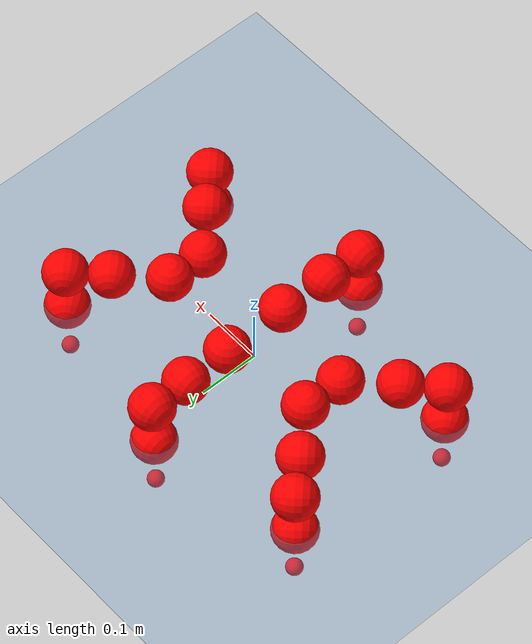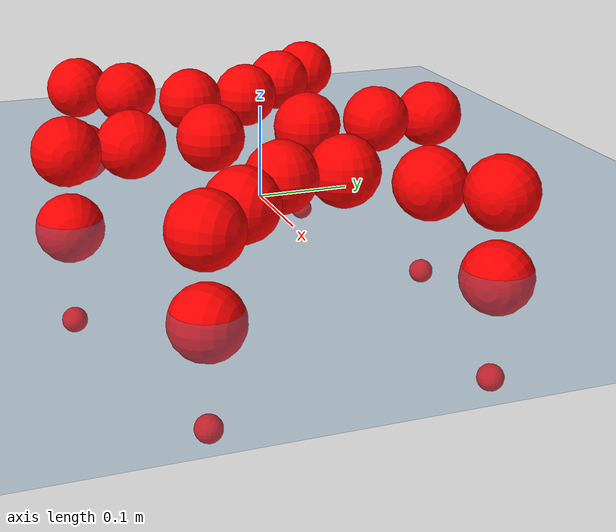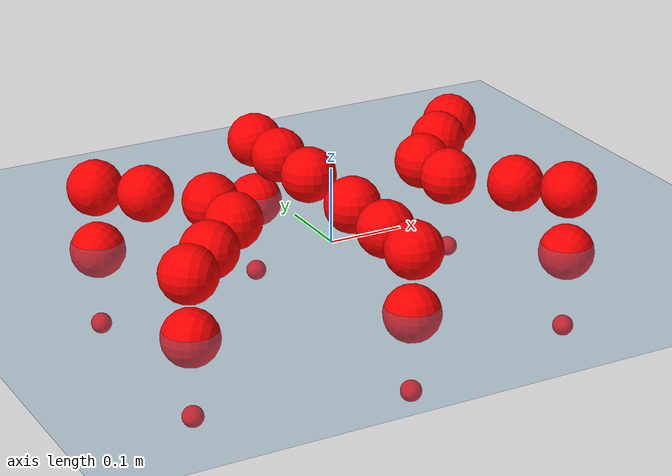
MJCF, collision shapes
<mujoco model="Golem">
  <compiler angle="radian" assetdir="assets" balanceinertia="true" inertiafromgeom="false"/>

  <option timestep="0.005" density="1.2" viscosity="2e-05"/>

  <size nkey="1"/>

  <visual>
    <quality shadowsize="8192"/>
    <map shadowclip="0.5"/>
  </visual>

  <default>
    <default class="/">
      <joint armature="0.01" damping="0.01" frictionloss="0.01"/>
      <geom contype="0" conaffinity="0" group="1" solref="-1000 -80"/>
      <site size="0.01 0.005 0.005" group="5"/>
      <general forcelimited="true" biastype="affine" gainprm="25" biasprm="0 -25 -0.5"/>
      <default class="visual">
        <geom type="mesh" group="2"/>
      </default>
      <default class="collision">
        <geom group="3"/>
      </default>
      <default class="foot">
        <geom size="0.01 0 0" condim="6" group="4" priority="1" solimp="0.015 1 0.01"/>
      </default>
      <default class="reward_collision_sphere">
        <geom group="5" rgba="1 0 0 1"/>
      </default>
    </default>
  </default>

  <asset>
    <texture type="skybox" colorspace="auto" name="//unnamed_texture_0" builtin="gradient" rgb1="0.95 0.95 0.95" rgb2="0.95 0.95 0.95" width="100" height="600"/>
    <texture type="2d" colorspace="auto" name="texplane" builtin="checker" rgb1="0.345 0.575 0.748" rgb2="0.345 0.575 0.748" markrgb="1 1 1" width="512" height="512"/>
    <material name="MatPlane" class="/" texture="texplane" texuniform="true" texrepeat="2 2" specular="0.9"/>
    <mesh name="body" class="/" file="body.stl" scale="0.001 0.001 0.001"/>
    <mesh name="coxa" class="/" file="coxa.stl" scale="0.001 0.001 0.001"/>
    <mesh name="femur" class="/" file="femur.stl" scale="0.001 0.001 0.001"/>
    <mesh name="tibia" class="/" file="tibia.stl" scale="0.001 0.001 0.001"/>
    <mesh name="tarsus" class="/" file="tarsus.stl" scale="0.001 0.001 0.001"/>
  </asset>

  <worldbody>
    <geom name="floor" class="/" size="100 100 0.125" type="plane" group="0" material="MatPlane"/>
    <light name="toplight_shadow" class="/" pos="0 0 5" dir="0.0990148 0.0990148 -0.990148" type="directional" ambient="0.04 0.04 0.04" diffuse="0.55 0.55 0.55" specular="0.12 0.12 0.12"/>
    <light name="toplight_fill" class="/" pos="0 0 5" dir="0.0990148 0.0990148 -0.990148" type="directional" castshadow="false" ambient="0.04 0.04 0.04" diffuse="0.3 0.3 0.3" specular="0.08 0.08 0.08"/>
    <body name="trunk" pos="-0.000467365 0.000370137 0.000156638" quat="1 -6.40679e-05 4.10892e-05 3.63837e-05">
      <inertial pos="0.000290035 -0.000946644 -0.00174664" quat="0.99999 0.000643659 -0.00321319 0.0030357" mass="2.80289" diaginertia="0.0088735 0.0010858 0.0172381"/>
      <joint name="//unnamed_joint_0" type="free"/>
      <geom name="//unnamed_geom_1" class="/" pos="0 0 0.0711149" quat="1 0 0 0" type="mesh" rgba="0.9 0.9 0.9 1" mesh="body"/>
      <site name="imu" class="/" pos="0.127412 0.00248437 0.104993" size="0.00906058"/>
      <camera name="track" class="/" pos="0 -1.27556 0" quat="0.707107 0.707107 0 0" mode="trackcom"/>
      <camera name="ego_camera" class="/" pos="0.125999 0 0.111117" quat="-0.5 -0.5 0.5 0.5"/>
      <body name="coxa_RR" pos="-0.172691 -0.0535677 0.0726219" quat="0.382602 4.64585e-05 2.3957e-05 -0.923913">
        <inertial pos="-0.00026199 0.000888561 0.000815267" quat="1 0.000385678 -0.000299423 0.000289467" mass="0.149401" diaginertia="0.00862433 0.00107869 0.0169114"/>
        <joint name="coxa_joint_RR" class="/" pos="0 0 0" axis="-0.00464937 -0.00400055 -0.999981" range="-3.12865 3.1378" armature="0.00925703" damping="0" frictionloss="0.00911507"/>
        <geom name="//unnamed_geom_2" class="/" type="mesh" rgba="0.2 0.2 0.2 1" mesh="coxa"/>
        <geom name="//unnamed_geom_3" class="reward_collision_sphere" size="0.0362423" pos="-0.0290767 0 0"/>
        <body name="femur_RR" pos="0.0586108 -1.70791e-05 -0.00133538" quat="0.500023 -0.500267 0.500059 0.49965">
          <inertial pos="-0.000152279 5.98676e-05 0.000839475" quat="0.999999 -0.000560874 0.000805249 -0.00130223" mass="0.146933" diaginertia="0.00861312 0.00104206 0.0165959"/>
          <joint name="femur_joint_RR" class="/" pos="0 0 0" axis="0.00583593 0.000903634 -0.999983" range="-3.13819 3.12496" armature="0.00905136" damping="0.000906578" frictionloss="0.00862041"/>
          <geom name="//unnamed_geom_4" class="/" type="mesh" rgba="0.9 0.9 0.9 1" mesh="femur"/>
          <geom name="//unnamed_geom_5" class="reward_collision_sphere" size="0.0362423"/>
          <body name="tibia_RR" pos="0.00136968 -0.0690703 -0.000930603" quat="-3.37806e-05 1 4.64855e-05 4.04216e-05">
            <inertial pos="-4.85903e-05 -0.00125009 9.83343e-06" quat="0.999972 -0.00376451 -0.00295572 -0.00575567" mass="0.148852" diaginertia="0.00865643 0.00105864 0.0170119"/>
            <joint name="tibia_joint_RR" class="/" pos="0 0 0" axis="-0.000364996 -0.00122289 0.999999" range="-3.14854 3.14225" armature="0.009155" damping="0" frictionloss="0.00945257"/>
            <geom name="//unnamed_geom_6" class="/" type="mesh" rgba="0.2 0.2 0.2 1" mesh="tibia"/>
            <geom name="//unnamed_geom_7" class="reward_collision_sphere" size="0.0362423"/>
            <body name="tarsus_RR" pos="0.082021 -0.001375 0.000227866" quat="1 0.000147188 0.000202275 -0.000358235">
              <inertial pos="0.0581917 0.000382464 0.000361039" quat="0.496883 0.49875 0.50336 0.500983" mass="0.149487" diaginertia="0.0085555 0.00104971 0.0167915"/>
              <joint name="tarsus_joint_RR" class="/" pos="0 0 0" axis="-1.30066e-05 -1.48692e-05 1" range="-3.13001 3.13017" armature="0.00927202" damping="0.00751379" frictionloss="0.00914755"/>
              <geom name="//unnamed_geom_8" class="/" type="mesh" rgba="0.9 0.9 0.9 1" mesh="tarsus"/>
              <geom name="foot_1" class="foot" size="0.00863994" pos="0.108553 0 0" quat="0 -0.707107 0 0.707107"/>
              <geom name="//unnamed_geom_10" class="reward_collision_sphere" size="0.0362423"/>
              <geom name="//unnamed_geom_11" class="reward_collision_sphere" size="0.0135909" pos="0.104192 0 0"/>
              <site name="foot_1" class="foot" pos="0.108553 0 0" quat="0 -0.707107 0 0.707107" size="0.00906058"/>
            </body>
          </body>
        </body>
      </body>
      <body name="coxa_RM" pos="0.000241651 -0.0847292 0.0716365" quat="0.706542 -0.000227519 -1.75659e-05 -0.707671">
        <inertial pos="-5.76372e-05 -0.000120261 -0.000297935" quat="1 -0.000400846 -5.6116e-05 -0.000178006" mass="0.149566" diaginertia="0.00858575 0.00106137 0.0169307"/>
        <joint name="coxa_joint_RM" class="/" pos="0 0 0" axis="-9.67803e-06 0.00223683 -0.999997" stiffness="0.000222626" range="-3.13505 3.13506" armature="0.00899646" damping="0.00815456" frictionloss="0.0086853"/>
        <geom name="//unnamed_geom_12" class="/" type="mesh" rgba="0.2 0.2 0.2 1" mesh="coxa"/>
        <geom name="//unnamed_geom_13" class="reward_collision_sphere" size="0.0362423" pos="-0.0290767 0 0"/>
        <body name="femur_RM" pos="0.0563515 -0.00158028 0.000296475" quat="0.500104 -0.500087 0.500092 0.499717">
          <inertial pos="0.00138761 0.000504002 -2.0645e-05" quat="0.999993 0.00171396 -0.00167091 -0.0027499" mass="0.146877" diaginertia="0.00833526 0.00104172 0.0164192"/>
          <joint name="femur_joint_RM" class="/" pos="0 0 0" axis="0.000722074 0.0016827 -0.999998" range="-3.14293 3.11637" armature="0.00891672" damping="0.00560629" frictionloss="0.00946049"/>
          <geom name="//unnamed_geom_14" class="/" type="mesh" rgba="0.9 0.9 0.9 1" mesh="femur"/>
          <geom name="//unnamed_geom_15" class="reward_collision_sphere" size="0.0362423"/>
          <body name="tibia_RM" pos="0.000937676 -0.0678932 -0.000286268" quat="0.000328243 1 -0.000107763 7.14238e-05">
            <inertial pos="0.000775636 0.00160415 0.000313318" quat="0.999993 -0.000391343 -0.00070074 -0.00355758" mass="0.15072" diaginertia="0.00864846 0.00106807 0.0171289"/>
            <joint name="tibia_joint_RM" class="/" pos="0 0 0" axis="0.00171045 0.00055501 0.999998" range="-3.14461 3.12668" armature="0.00929497" damping="0.0129288" frictionloss="0.00898846"/>
            <geom name="//unnamed_geom_16" class="/" type="mesh" rgba="0.2 0.2 0.2 1" mesh="tibia"/>
            <geom name="//unnamed_geom_17" class="reward_collision_sphere" size="0.0362423"/>
            <body name="tarsus_RM" pos="0.0832223 -0.000377911 0.000361486" quat="1 3.90454e-05 2.97363e-05 3.01779e-05">
              <inertial pos="0.0588551 0.000204408 -0.000346889" quat="0.499264 0.500843 0.499573 0.500318" mass="0.152269" diaginertia="0.00855049 0.0010628 0.017355"/>
              <joint name="tarsus_joint_RM" class="/" pos="0 0 0" axis="-0.00144654 0.00175736 0.999997" stiffness="0.000242202" range="-3.14104 3.12984" armature="0.00891163" damping="0.0079358" frictionloss="0.00902175"/>
              <geom name="//unnamed_geom_18" class="/" type="mesh" rgba="0.9 0.9 0.9 1" mesh="tarsus"/>
              <geom name="foot_2" class="foot" size="0.00892703" pos="0.108553 0 0" quat="0 -0.707107 0 0.707107"/>
              <geom name="//unnamed_geom_20" class="reward_collision_sphere" size="0.0362423"/>
              <geom name="//unnamed_geom_21" class="reward_collision_sphere" size="0.0135909" pos="0.104192 0 0"/>
              <site name="foot_2" class="foot" pos="0.108553 0 0" quat="0 -0.707107 0 0.707107" size="0.00906058"/>
            </body>
          </body>
        </body>
      </body>
      <body name="coxa_RF" pos="0.173358 -0.0533128 0.0725246" quat="0.923848 0.000220462 -0.000286336 -0.38276">
        <inertial pos="0.00018569 -0.0012728 0.000335913" quat="0.999984 -0.00242966 -0.00441494 0.00246655" mass="0.148641" diaginertia="0.00867302 0.001059 0.0170024"/>
        <joint name="coxa_joint_RF" class="/" pos="0 0 0" axis="-0.000989078 0.00143037 -0.999998" range="-3.11194 3.12037" armature="0.00885715" damping="0" frictionloss="0.00920805"/>
        <geom name="//unnamed_geom_22" class="/" type="mesh" rgba="0.2 0.2 0.2 1" mesh="coxa"/>
        <geom name="//unnamed_geom_23" class="reward_collision_sphere" size="0.0362423" pos="-0.0290767 0 0"/>
        <body name="femur_RF" pos="0.0583182 0.00135003 -0.000123331" quat="0.500047 -0.499907 0.500034 0.500011">
          <inertial pos="0.00025459 0.00103055 -7.24894e-05" quat="0.999998 0.000466845 -0.00180272 0.00121039" mass="0.149613" diaginertia="0.00882497 0.00107459 0.0173954"/>
          <joint name="femur_joint_RF" class="/" pos="0 0 0" axis="-0.000151202 0.00160542 -0.999999" range="-3.14357 3.15738" armature="0.00895579" damping="0.0101601" frictionloss="0.00949787"/>
          <geom name="//unnamed_geom_24" class="/" type="mesh" rgba="0.9 0.9 0.9 1" mesh="femur"/>
          <geom name="//unnamed_geom_25" class="reward_collision_sphere" size="0.0362423"/>
          <body name="tibia_RF" pos="0.00073609 -0.0685724 -0.000616113" quat="6.12535e-06 1 1.0282e-05 -6.26289e-06">
            <inertial pos="0.000300525 0.000227672 -0.00168921" quat="0.999994 -0.00144732 -0.00312152 -0.000839022" mass="0.150409" diaginertia="0.00862497 0.00104814 0.0170966"/>
            <joint name="tibia_joint_RF" class="/" pos="0 0 0" axis="0.00264552 -0.00261315 0.999993" stiffness="0.000333753" range="-3.13304 3.12061" armature="0.00892844" damping="0.0116108" frictionloss="0.00868375"/>
            <geom name="//unnamed_geom_26" class="/" type="mesh" rgba="0.2 0.2 0.2 1" mesh="tibia"/>
            <geom name="//unnamed_geom_27" class="reward_collision_sphere" size="0.0362423"/>
            <body name="tarsus_RF" pos="0.0857666 0.000797041 -0.000544427" quat="1 -7.88449e-06 -2.31616e-05 8.78996e-06">
              <inertial pos="0.0587635 0.000219501 -0.000367779" quat="0.499287 0.499879 0.4995 0.501332" mass="0.14705" diaginertia="0.00852986 0.00103322 0.016459"/>
              <joint name="tarsus_joint_RF" class="/" pos="0 0 0" axis="0.00196363 0.0035127 0.999992" stiffness="0.0231683" range="-3.13671 3.14187" armature="0.00909115" damping="0" frictionloss="0.0092157"/>
              <geom name="//unnamed_geom_28" class="/" type="mesh" rgba="0.9 0.9 0.9 1" mesh="tarsus"/>
              <geom name="foot_3" class="foot" size="0.00895768" pos="0.108553 0 0" quat="0 -0.707107 0 0.707107"/>
              <geom name="//unnamed_geom_30" class="reward_collision_sphere" size="0.0362423"/>
              <geom name="//unnamed_geom_31" class="reward_collision_sphere" size="0.0135909" pos="0.104192 0 0"/>
              <site name="foot_3" class="foot" pos="0.108553 0 0" quat="0 -0.707107 0 0.707107" size="0.00906058"/>
            </body>
          </body>
        </body>
      </body>
      <body name="coxa_LR" pos="-0.171553 0.0552438 0.0730371" quat="0.38272 5.5618e-05 0.000218017 0.923864">
        <inertial pos="0.000343544 -0.000575376 0.00146138" quat="1 -0.000113334 -2.86354e-05 -7.65334e-05" mass="0.14982" diaginertia="0.00875978 0.00105903 0.0166027"/>
        <joint name="coxa_joint_LR" class="/" pos="0 0 0" axis="0.00135571 0.000849301 -0.999999" range="-3.12259 3.11863" armature="0.00862978" damping="0.00524581" frictionloss="0.00905119"/>
        <geom name="//unnamed_geom_32" class="/" type="mesh" rgba="0.2 0.2 0.2 1" mesh="coxa"/>
        <geom name="//unnamed_geom_33" class="reward_collision_sphere" size="0.0362423" pos="-0.0290767 0 0"/>
        <body name="femur_LR" pos="0.0584087 -0.0023726 -0.000537425" quat="0.500173 -0.500287 0.49991 0.499629">
          <inertial pos="0.000268484 -0.00209164 0.00042609" quat="1 0.000277413 0.000222538 0.000260935" mass="0.149259" diaginertia="0.00840037 0.00105069 0.0165934"/>
          <joint name="femur_joint_LR" class="/" pos="0 0 0" axis="-0.000337283 -0.00235333 0.999997" range="-3.1215 3.14011" armature="0.00883164" damping="0" frictionloss="0.00902939"/>
          <geom name="//unnamed_geom_34" class="/" type="mesh" rgba="0.9 0.9 0.9 1" mesh="femur"/>
          <geom name="//unnamed_geom_35" class="reward_collision_sphere" size="0.0362423"/>
          <body name="tibia_LR" pos="0.00165247 -0.0694867 -0.0033927" quat="0.000222619 1 -7.0307e-05 -0.000335979">
            <inertial pos="-0.00103524 -0.000228811 0.000984855" quat="0.999994 -0.0017771 0.000942475 0.00295618" mass="0.149845" diaginertia="0.00852491 0.00106562 0.0169665"/>
            <joint name="tibia_joint_LR" class="/" pos="0 0 0" axis="0.00223084 -0.00197425 -0.999996" stiffness="0.00101813" range="-3.1567 3.15991" armature="0.00879824" damping="0" frictionloss="0.00902087"/>
            <geom name="//unnamed_geom_36" class="/" type="mesh" rgba="0.2 0.2 0.2 1" mesh="tibia"/>
            <geom name="//unnamed_geom_37" class="reward_collision_sphere" size="0.0362423"/>
            <body name="tarsus_LR" pos="0.0855084 -4.88641e-05 -0.000563585" quat="1 9.93463e-05 3.14445e-05 8.95483e-05">
              <inertial pos="0.0600628 -0.00104824 -0.000802926" quat="0.498708 0.501883 0.502552 0.496835" mass="0.148446" diaginertia="0.00846538 0.00106891 0.0167744"/>
              <joint name="tarsus_joint_LR" class="/" pos="0 0 0" axis="0.00398301 -0.00781049 -0.999962" range="-3.1187 3.1532" armature="0.00911004" damping="0" frictionloss="0.00939287"/>
              <geom name="//unnamed_geom_38" class="/" type="mesh" rgba="0.9 0.9 0.9 1" mesh="tarsus"/>
              <geom name="foot_4" class="foot" size="0.00965218" pos="0.108553 0 0" quat="0.707107 0 -0.707107 0"/>
              <geom name="//unnamed_geom_40" class="reward_collision_sphere" size="0.0362423"/>
              <geom name="//unnamed_geom_41" class="reward_collision_sphere" size="0.0135909" pos="0.104192 0 0"/>
              <site name="foot_4" class="foot" pos="0.108553 0 0" quat="0.707107 0 -0.707107 0" size="0.00906058"/>
            </body>
          </body>
        </body>
      </body>
      <body name="coxa_LM" pos="-0.0026599 0.083817 0.0732394" quat="0.707104 2.47621e-05 -8.89614e-05 0.707109">
        <inertial pos="0.000708406 0.000141244 -0.000478757" quat="0.999993 -0.00197442 -0.00312195 -0.000928058" mass="0.151164" diaginertia="0.00866293 0.00107554 0.0172819"/>
        <joint name="coxa_joint_LM" class="/" pos="0 0 0" axis="0.00973983 -0.00207669 -0.99995" range="-3.14546 3.13834" armature="0.0088035" damping="0.00728368" frictionloss="0.00875093"/>
        <geom name="//unnamed_geom_42" class="/" type="mesh" rgba="0.2 0.2 0.2 1" mesh="coxa"/>
        <geom name="//unnamed_geom_43" class="reward_collision_sphere" size="0.0362423" pos="-0.0290767 0 0"/>
        <body name="femur_LM" pos="0.0527669 0.00164764 -0.0003483" quat="0.499932 -0.499979 0.500234 0.499855">
          <inertial pos="-0.0003702 -0.000320995 0.000410621" quat="1 -2.96835e-05 -4.16581e-05 3.09357e-05" mass="0.147094" diaginertia="0.00845043 0.00107533 0.01707"/>
          <joint name="femur_joint_LM" class="/" pos="0 0 0" axis="-0.000825277 -0.00238946 0.999997" stiffness="0.000469702" range="-3.1482 3.14584" armature="0.00888402" damping="0" frictionloss="0.00921372"/>
          <geom name="//unnamed_geom_44" class="/" type="mesh" rgba="0.9 0.9 0.9 1" mesh="femur"/>
          <geom name="//unnamed_geom_45" class="reward_collision_sphere" size="0.0362423"/>
          <body name="tibia_LM" pos="0.000814493 -0.0661644 0.0020573" quat="-2.56854e-05 1 -0.000260412 -5.81966e-05">
            <inertial pos="-0.000771744 -0.00117858 -0.000677968" quat="0.999989 -0.00314822 0.00228587 0.00271342" mass="0.147893" diaginertia="0.00852233 0.00106995 0.0169026"/>
            <joint name="tibia_joint_LM" class="/" pos="0 0 0" axis="0.000698884 -0.00226747 -0.999997" range="-3.143 3.13912" armature="0.00896154" damping="0.0015933" frictionloss="0.00892533"/>
            <geom name="//unnamed_geom_46" class="/" type="mesh" rgba="0.2 0.2 0.2 1" mesh="tibia"/>
            <geom name="//unnamed_geom_47" class="reward_collision_sphere" size="0.0362423"/>
            <body name="tarsus_LM" pos="0.0865303 -0.000623103 -0.0008998" quat="1 -3.36347e-06 -0.000140971 -0.000247633">
              <inertial pos="0.057847 0.000823932 -0.000909925" quat="0.503103 0.496798 0.498426 0.501648" mass="0.149364" diaginertia="0.00869348 0.00106087 0.0168408"/>
              <joint name="tarsus_joint_LM" class="/" pos="0 0 0" axis="-0.00438711 -0.00350847 -0.999984" range="-3.13058 3.1339" armature="0.00904704" damping="0.00299495" frictionloss="0.00947672"/>
              <geom name="//unnamed_geom_48" class="/" type="mesh" rgba="0.9 0.9 0.9 1" mesh="tarsus"/>
              <geom name="foot_5" class="foot" size="0.00906847" pos="0.108553 0 0" quat="0.707107 0 -0.707107 0"/>
              <geom name="//unnamed_geom_50" class="reward_collision_sphere" size="0.0362423"/>
              <geom name="//unnamed_geom_51" class="reward_collision_sphere" size="0.0135909" pos="0.104192 0 0"/>
              <site name="foot_5" class="foot" pos="0.108553 0 0" quat="0.707107 0 -0.707107 0" size="0.00906058"/>
            </body>
          </body>
        </body>
      </body>
      <body name="coxa_LF" pos="0.173422 0.0528107 0.0713453" quat="0.923847 -0.000126703 -5.78747e-05 0.382762">
        <inertial pos="0.0004532 -0.000172534 0.000829854" quat="1 4.15304e-05 -0.000120536 -0.000227752" mass="0.150251" diaginertia="0.0084669 0.00107189 0.017084"/>
        <joint name="coxa_joint_LF" class="/" pos="0 0 0" axis="-0.00671887 0.00195828 -0.999976" range="-3.14807 3.14003" armature="0.00892198" damping="0.00910773" frictionloss="0.00989449"/>
        <geom name="//unnamed_geom_52" class="/" type="mesh" rgba="0.2 0.2 0.2 1" mesh="coxa"/>
        <geom name="//unnamed_geom_53" class="reward_collision_sphere" size="0.0362423" pos="-0.0290767 0 0"/>
        <body name="femur_LF" pos="0.0577699 0.000114416 0.000217078" quat="0.499931 -0.500017 0.500024 0.500028">
          <inertial pos="-0.00176467 0.00044412 0.0018379" quat="0.999999 -0.000529133 -0.000568862 0.000774418" mass="0.150247" diaginertia="0.00864789 0.00105974 0.0169496"/>
          <joint name="femur_joint_LF" class="/" pos="0 0 0" axis="-0.00072207 0.000425859 1" range="-3.14401 3.13977" armature="0.00877678" damping="0" frictionloss="0.00902269"/>
          <geom name="//unnamed_geom_54" class="/" type="mesh" rgba="0.9 0.9 0.9 1" mesh="femur"/>
          <geom name="//unnamed_geom_55" class="reward_collision_sphere" size="0.0362423"/>
          <body name="tibia_LF" pos="-0.000479413 -0.0687908 0.000827634" quat="-0.000276767 1 -0.000272732 0.000230372">
            <inertial pos="0.000905055 -0.00170957 -0.000697323" quat="1 -3.79647e-06 -9.948e-06 1.13408e-05" mass="0.143581" diaginertia="0.00818744 0.0010283 0.0163927"/>
            <joint name="tibia_joint_LF" class="/" pos="0 0 0" axis="0.0035495 0.0015134 -0.999993" stiffness="0.00189926" range="-3.13548 3.14935" armature="0.00889729" damping="0" frictionloss="0.00891628"/>
            <geom name="//unnamed_geom_56" class="/" type="mesh" rgba="0.2 0.2 0.2 1" mesh="tibia"/>
            <geom name="//unnamed_geom_57" class="reward_collision_sphere" size="0.0362423"/>
            <body name="tarsus_LF" pos="0.0843158 0.000685328 0.00105501" quat="1 -0.000156854 0.000124416 4.23344e-05">
              <inertial pos="0.0586111 -0.000416071 -0.000491508" quat="0.500364 0.500921 0.497625 0.501082" mass="0.145397" diaginertia="0.00827575 0.00102871 0.0163725"/>
              <joint name="tarsus_joint_LF" class="/" pos="0 0 0" axis="-0.000322998 -0.00544912 -0.999985" range="-3.13548 3.14163" armature="0.00914667" damping="0.0151664" frictionloss="0.00833409"/>
              <geom name="//unnamed_geom_58" class="/" type="mesh" rgba="0.9 0.9 0.9 1" mesh="tarsus"/>
              <geom name="foot_6" class="foot" size="0.00873677" pos="0.108553 0 0" quat="0.707107 0 -0.707107 0"/>
              <geom name="//unnamed_geom_60" class="reward_collision_sphere" size="0.0362423"/>
              <geom name="//unnamed_geom_61" class="reward_collision_sphere" size="0.0135909" pos="0.104192 0 0"/>
              <site name="foot_6" class="foot" pos="0.108553 0 0" quat="0.707107 0 -0.707107 0" size="0.00906058"/>
            </body>
          </body>
        </body>
      </body>
    </body>
  </worldbody>

  <contact>
    <pair class="/" geom1="floor" geom2="foot_1" name="//unnamed_contact_0"/>
    <pair class="/" geom1="floor" geom2="foot_2" name="//unnamed_contact_1"/>
    <pair class="/" geom1="floor" geom2="foot_3" name="//unnamed_contact_2"/>
    <pair class="/" geom1="floor" geom2="foot_4" name="//unnamed_contact_3"/>
    <pair class="/" geom1="floor" geom2="foot_5" name="//unnamed_contact_4"/>
    <pair class="/" geom1="floor" geom2="foot_6" name="//unnamed_contact_5"/>
  </contact>

  <actuator>
    <general name="coxa_joint_RR" class="/" joint="coxa_joint_RR" forcerange="-6.81007 6.81007" gainprm="21.8664" biasprm="0 -21.8664 -0.484437"/>
    <general name="femur_joint_RR" class="/" joint="femur_joint_RR" forcerange="-6.51801 6.51801" gainprm="21.8664" biasprm="0 -21.8664 -0.484437"/>
    <general name="tibia_joint_RR" class="/" joint="tibia_joint_RR" forcerange="-6.72487 6.72487" gainprm="21.8664" biasprm="0 -21.8664 -0.484437"/>
    <general name="tarsus_joint_RR" class="/" joint="tarsus_joint_RR" forcerange="-6.81313 6.81313" gainprm="21.8664" biasprm="0 -21.8664 -0.484437"/>
    <general name="coxa_joint_RM" class="/" joint="coxa_joint_RM" forcerange="-6.72566 6.72566" gainprm="21.8664" biasprm="0 -21.8664 -0.484437"/>
    <general name="femur_joint_RM" class="/" joint="femur_joint_RM" forcerange="-6.59817 6.59817" gainprm="21.8664" biasprm="0 -21.8664 -0.484437"/>
    <general name="tibia_joint_RM" class="/" joint="tibia_joint_RM" forcerange="-6.66275 6.66275" gainprm="21.8664" biasprm="0 -21.8664 -0.484437"/>
    <general name="tarsus_joint_RM" class="/" joint="tarsus_joint_RM" forcerange="-6.97652 6.97652" gainprm="21.8664" biasprm="0 -21.8664 -0.484437"/>
    <general name="coxa_joint_RF" class="/" joint="coxa_joint_RF" forcerange="-6.39484 6.39484" gainprm="21.8664" biasprm="0 -21.8664 -0.484437"/>
    <general name="femur_joint_RF" class="/" joint="femur_joint_RF" forcerange="-6.3075 6.3075" gainprm="21.8664" biasprm="0 -21.8664 -0.484437"/>
    <general name="tibia_joint_RF" class="/" joint="tibia_joint_RF" forcerange="-6.48117 6.48117" gainprm="21.8664" biasprm="0 -21.8664 -0.484437"/>
    <general name="tarsus_joint_RF" class="/" joint="tarsus_joint_RF" forcerange="-6.69652 6.69652" gainprm="21.8664" biasprm="0 -21.8664 -0.484437"/>
    <general name="coxa_joint_LR" class="/" joint="coxa_joint_LR" forcerange="-6.79903 6.79903" gainprm="21.8664" biasprm="0 -21.8664 -0.484437"/>
    <general name="femur_joint_LR" class="/" joint="femur_joint_LR" forcerange="-6.54512 6.54512" gainprm="21.8664" biasprm="0 -21.8664 -0.484437"/>
    <general name="tibia_joint_LR" class="/" joint="tibia_joint_LR" forcerange="-6.63586 6.63586" gainprm="21.8664" biasprm="0 -21.8664 -0.484437"/>
    <general name="tarsus_joint_LR" class="/" joint="tarsus_joint_LR" forcerange="-6.79455 6.79455" gainprm="21.8664" biasprm="0 -21.8664 -0.484437"/>
    <general name="coxa_joint_LM" class="/" joint="coxa_joint_LM" forcerange="-6.51796 6.51796" gainprm="21.8664" biasprm="0 -21.8664 -0.484437"/>
    <general name="femur_joint_LM" class="/" joint="femur_joint_LM" forcerange="-6.75235 6.75235" gainprm="21.8664" biasprm="0 -21.8664 -0.484437"/>
    <general name="tibia_joint_LM" class="/" joint="tibia_joint_LM" forcerange="-6.83149 6.83149" gainprm="21.8664" biasprm="0 -21.8664 -0.484437"/>
    <general name="tarsus_joint_LM" class="/" joint="tarsus_joint_LM" forcerange="-6.56111 6.56111" gainprm="21.8664" biasprm="0 -21.8664 -0.484437"/>
    <general name="coxa_joint_LF" class="/" joint="coxa_joint_LF" forcerange="-6.43548 6.43548" gainprm="21.8664" biasprm="0 -21.8664 -0.484437"/>
    <general name="femur_joint_LF" class="/" joint="femur_joint_LF" forcerange="-6.79543 6.79543" gainprm="21.8664" biasprm="0 -21.8664 -0.484437"/>
    <general name="tibia_joint_LF" class="/" joint="tibia_joint_LF" forcerange="-6.42894 6.42894" gainprm="21.8664" biasprm="0 -21.8664 -0.484437"/>
    <general name="tarsus_joint_LF" class="/" joint="tarsus_joint_LF" forcerange="-6.80826 6.80826" gainprm="21.8664" biasprm="0 -21.8664 -0.484437"/>
  </actuator>

  <sensor>
    <gyro site="imu" name="imu_angular_velocity"/>
    <velocimeter site="imu" name="imu_linear_velocity"/>
    <framelinvel objtype="site" objname="foot_1" name="foot_1_global_linear_velocity"/>
    <framelinvel objtype="site" objname="foot_2" name="foot_2_global_linear_velocity"/>
    <framelinvel objtype="site" objname="foot_3" name="foot_3_global_linear_velocity"/>
    <framelinvel objtype="site" objname="foot_4" name="foot_4_global_linear_velocity"/>
    <framelinvel objtype="site" objname="foot_5" name="foot_5_global_linear_velocity"/>
    <framelinvel objtype="site" objname="foot_6" name="foot_6_global_linear_velocity"/>
  </sensor>

  <keyframe>
    <key name="home" qpos="0 0 0.1457 1 0 0 0 0 0 0 0 0 0 0 0 0 0 0 0 0 0 0 0 0 0 0 0 0 0 0 0"/>
  </keyframe>
</mujoco>
